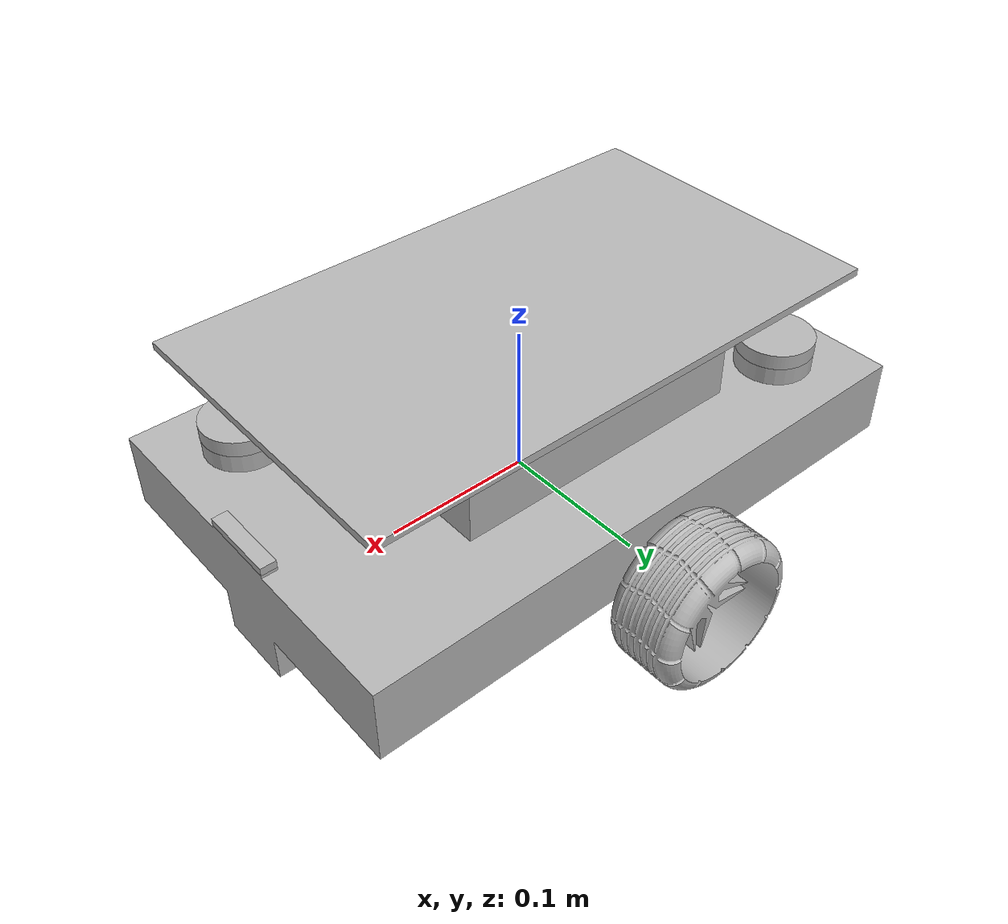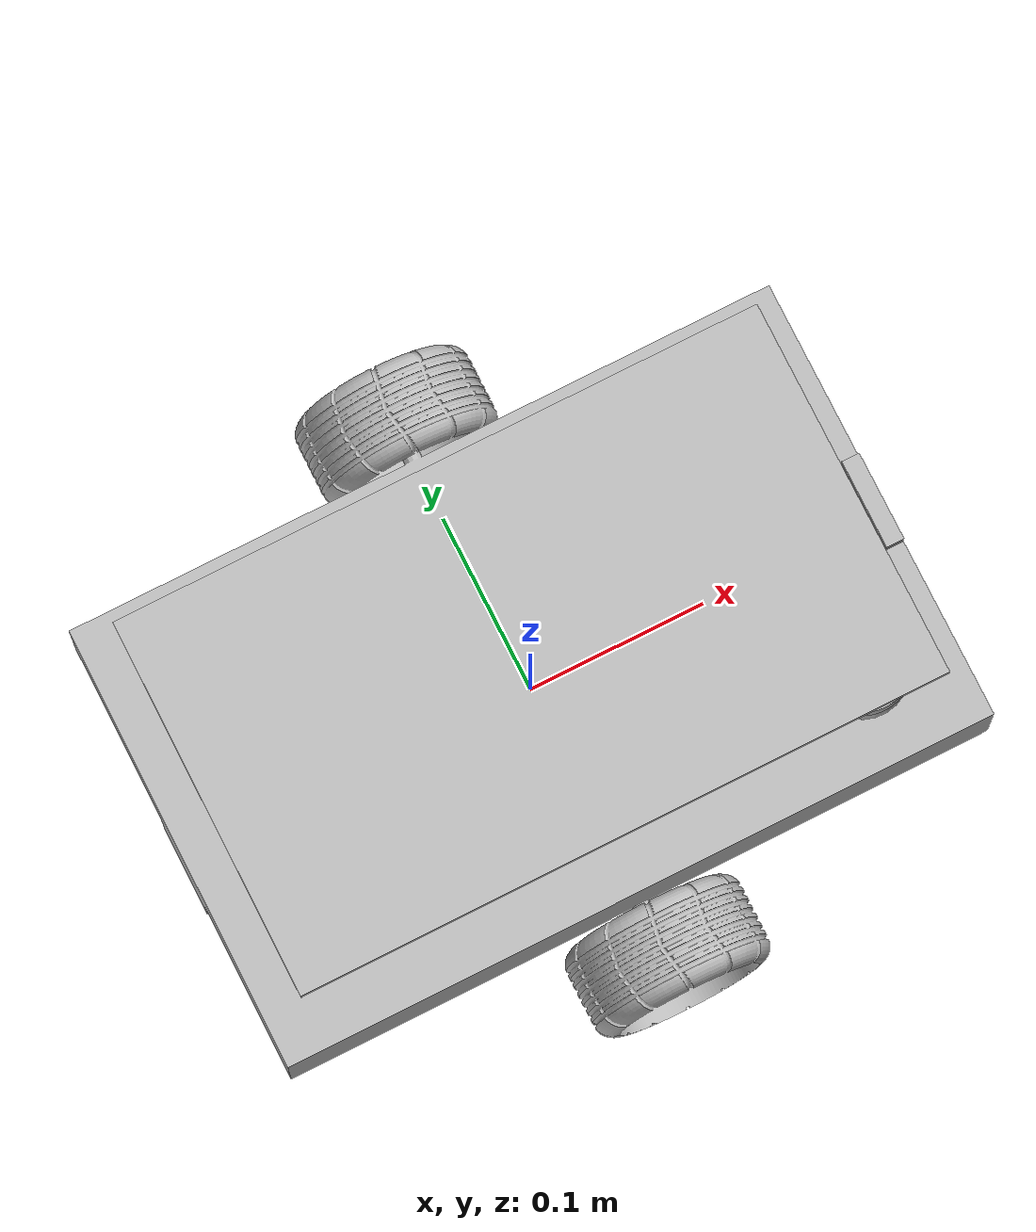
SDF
<?xml version="1.0" ?>
<sdf version="1.11">
  <model name="load_250_v33">
    <link name="base_link">
      <inertial>
        <mass>0.0001</mass>
        <inertia>
          <ixx>1e-09</ixx>
          <ixy>0</ixy>
          <ixz>0</ixz>
          <iyy>1e-09</iyy>
          <iyz>0</iyz>
          <izz>1e-09</izz>
        </inertia>
      </inertial>
    </link>
    <link name="froller_1">
      <pose relative_to="__model__">-0.20000000558793546 -0.1750000026077032 -0.05 0.0 -0.0 0.0</pose>
      <inertial>
        <pose>0.37500000558793545 0.1750000026077032 0.020000000000000004 0.0 -0.0 0.0</pose>
        <mass>0.2630560248605853</mass>
        <inertia>
          <ixx>4.208896397769348e-05</ixx>
          <ixy>-2.842170943040401e-18</ixy>
          <ixz>0.0</ixz>
          <iyy>4.208896397768676e-05</iyy>
          <iyz>1.7763568394002505e-19</iyz>
          <izz>4.208896397768849e-05</izz>
        </inertia>
      </inertial>
      <visual name="froller_1__froller_visual">
        <geometry>
          <mesh>
            <scale>0.01 0.01 0.01</scale>
            <uri>meshes/froller_1/froller_visual.obj</uri>
          </mesh>
        </geometry>
      </visual>
      <collision name="froller_1__froller_collision">
        <pose relative_to="__model__">0.175 0.0 -0.03 -0.0 -1.5707963267948966 0</pose>
        <geometry>
          <sphere>
            <radius>0.02</radius>
          </sphere>
        </geometry>
        <surface>
          <friction>
            <torsional>
              <coefficient>0.0</coefficient>
            </torsional>
            <ode>
              <mu>0.0</mu>
              <mu2>0.0</mu2>
            </ode>
            <bullet>
              <friction>0.0</friction>
              <friction2>0.0</friction2>
              <rolling_friction>0.0</rolling_friction>
            </bullet>
          </friction>
        </surface>
      </collision>
    </link>
    <link name="broller_1">
      <pose relative_to="__model__">-0.2 -0.175 -0.05 0.0 -0.0 0.0</pose>
      <inertial>
        <pose>0.025000000000000022 0.17500000000000002 0.020000000000000004 0.0 -0.0 0.0</pose>
        <mass>0.2630560248605853</mass>
        <inertia>
          <ixx>4.208896397769061e-05</ixx>
          <ixy>1.4087204822734997e-19</ixy>
          <ixz>-2.168404344971009e-19</ixz>
          <iyy>4.208896397769543e-05</iyy>
          <iyz>7.490254653612431e-20</iyz>
          <izz>4.208896397769023e-05</izz>
        </inertia>
      </inertial>
      <visual name="broller_1__broller_visual">
        <geometry>
          <mesh>
            <scale>0.01 0.01 0.01</scale>
            <uri>meshes/broller_1/broller_visual.obj</uri>
          </mesh>
        </geometry>
      </visual>
      <collision name="broller_1__broller_collision">
        <pose relative_to="__model__">-0.175 0.0 -0.03 -0.0 -1.5707963267948966 0</pose>
        <geometry>
          <sphere>
            <radius>0.02</radius>
          </sphere>
        </geometry>
        <surface>
          <friction>
            <torsional>
              <coefficient>0.0</coefficient>
            </torsional>
            <ode>
              <mu>0.0</mu>
              <mu2>0.0</mu2>
            </ode>
            <bullet>
              <friction>0.0</friction>
              <friction2>0.0</friction2>
              <rolling_friction>0.0</rolling_friction>
            </bullet>
          </friction>
        </surface>
      </collision>
    </link>
    <link name="imu_1">
      <pose relative_to="__model__">-0.2 0.175 0.12 3.141592653589793 -0.0 0.0</pose>
      <inertial>
        <pose>0.2 0.17499999999999996 0.08500000000000002 -3.141592653589793 -0.0 0.0</pose>
        <mass>0.2355</mass>
        <inertia>
          <ixx>2.5512500000000003e-05</ixx>
          <ixy>0.0</ixy>
          <ixz>0.0</ixz>
          <iyy>5.69124999999993e-05</iyy>
          <iyz>0.0</iyz>
          <izz>6.672499999999956e-05</izz>
        </inertia>
      </inertial>
      <visual name="imu_1__imu_visual">
        <geometry>
          <mesh>
            <scale>0.01 0.01 0.01</scale>
            <uri>meshes/imu_1/imu_visual.obj</uri>
          </mesh>
        </geometry>
      </visual>
      <collision name="imu_1__imu_collision">
        <pose relative_to="__model__">0.0 0.0 0.035 -0.0 -1.5707963267948966 0</pose>
        <geometry>
          <box>
            <size>0.02 0.03 0.05</size>
          </box>
        </geometry>
      </collision>
    </link>
    <link name="platform_1">
      <pose relative_to="__model__">-0.2 -0.175 -0.05 0.0 -0.0 6.123233995736766e-17</pose>
      <inertial>
        <pose>0.20000000001825624 0.175 0.14461897647064387 0.0 -0.0 -6.123233995736766e-17</pose>
        <mass>4.533219999999998</mass>
        <inertia>
          <ixx>0.02476554880152236</ixx>
          <ixy>1.684420567471534e-11</ixy>
          <ixz>-5.238766976312822e-12</ixz>
          <iyy>0.05554422130152216</iyy>
          <iyz>1.448607690690551e-10</iyz>
          <izz>0.06986293283333335</izz>
        </inertia>
      </inertial>
      <visual name="platform_1__platform_visual">
        <geometry>
          <mesh>
            <scale>0.01 0.01 0.01</scale>
            <uri>meshes/platform_1/platform_visual.obj</uri>
          </mesh>
        </geometry>
      </visual>
      <collision name="platform_1__platform_collision">
        <pose relative_to="__model__">0.0 1.7763568394002505e-17 0.08850000629013424 -0.0 -1.5707963267948966 0</pose>
        <geometry>
          <box>
            <size>0.06700001258026848 0.21000000000000005 0.360000025160537</size>
          </box>
        </geometry>
      </collision>
    </link>
    <link name="camera_1">
      <pose relative_to="__model__">-0.2 0.175 0.16399999999999998 3.141592653589793 -0.0 0.0</pose>
      <inertial>
        <pose>0.395 0.17499999999999996 0.10950000000000001 -3.141592653589793 -0.0 0.0</pose>
        <mass>0.019624999999999997</mass>
        <inertia>
          <ixx>4.1294270833334005e-06</ixx>
          <ixy>1.7763568394002505e-19</ixy>
          <ixz>2.981555974335137e-19</ixz>
          <iyy>2.044270833332848e-07</iyy>
          <iyz>-4.4408920985006264e-20</iyz>
          <izz>4.2520833333339935e-06</izz>
        </inertia>
      </inertial>
      <visual name="camera_1__camera_visual">
        <geometry>
          <mesh>
            <scale>0.01 0.01 0.01</scale>
            <uri>meshes/camera_1/camera_visual.obj</uri>
          </mesh>
        </geometry>
      </visual>
      <collision name="camera_1__camera_collision">
        <pose relative_to="__model__">0.195 0.0 0.05449999999999999 -0.0 -1.5707963267948966 0</pose>
        <geometry>
          <box>
            <size>0.005 0.05 0.01</size>
          </box>
        </geometry>
      </collision>
    </link>
    <link name="flidar_1">
      <pose relative_to="__model__">-0.2 0.025 0.184 3.141592653589793 -0.0 0.0</pose>
      <inertial>
        <pose>0.35 0.09999999999999998 0.11699999999999999 -3.141592653589793 -0.0 0.0</pose>
        <mass>0.1541343895667491</mass>
        <inertia>
          <ixx>2.5367951616194146e-05</ixx>
          <ixy>1.3010426069826053e-18</ixy>
          <ixz>1.0842021724855044e-18</ixz>
          <iyy>2.5367951616192194e-05</iyy>
          <iyz>-7.589415207398531e-19</iyz>
          <izz>4.816699673960891e-05</izz>
        </inertia>
      </inertial>
      <visual name="flidar_1__flidar_visual">
        <geometry>
          <mesh>
            <scale>0.01 0.01 0.01</scale>
            <uri>meshes/flidar_1/flidar_visual.obj</uri>
          </mesh>
        </geometry>
      </visual>
      <collision name="flidar_1__flidar_collision">
        <pose relative_to="__model__">0.15 -0.075 0.06699999999999999 -0.0 -1.5707963267948966 0</pose>
        <geometry>
          <box>
            <size>0.01 0.05 0.05</size>
          </box>
        </geometry>
      </collision>
    </link>
    <link name="blidar_1">
      <pose relative_to="__model__">-0.2 0.325 0.184 3.141592653589793 -0.0 0.0</pose>
      <inertial>
        <pose>0.05000000000000002 0.25 0.11700000000000002 -3.141592653589793 -0.0 0.0</pose>
        <mass>0.15413438956674944</mass>
        <inertia>
          <ixx>2.536795161619588e-05</ixx>
          <ixy>0.0</ixy>
          <ixz>-2.168404344971009e-19</ixz>
          <iyy>2.536795161619393e-05</iyy>
          <iyz>5.421010862427522e-19</iyz>
          <izz>4.816699673961238e-05</izz>
        </inertia>
      </inertial>
      <visual name="blidar_1__blidar_visual">
        <geometry>
          <mesh>
            <scale>0.01 0.01 0.01</scale>
            <uri>meshes/blidar_1/blidar_visual.obj</uri>
          </mesh>
        </geometry>
      </visual>
      <collision name="blidar_1__blidar_collision">
        <pose relative_to="__model__">-0.15 0.075 0.06699999999999999 -0.0 -1.5707963267948966 0</pose>
        <geometry>
          <box>
            <size>0.01 0.05 0.05000000000000002</size>
          </box>
        </geometry>
      </collision>
    </link>
    <link name="lwheel_1">
      <pose relative_to="__model__">0.0 -0.345 0.0 3.141592653589793 -0.0 0.0</pose>
      <inertial>
        <pose>-3.8721528701299523e-07 -0.1900002387848987 -5.898795481194228e-06 -3.141592653589793 -0.0 0.0</pose>
        <mass>1.0452977986041458</mass>
        <inertia>
          <ixx>0.0011276214981046882</ixx>
          <ixy>3.9380700842175555e-10</ixy>
          <ixz>-6.493558752609229e-08</ixz>
          <iyy>0.001915839348354125</iyy>
          <iyz>-5.2607249342789435e-09</iyz>
          <izz>0.0011276094071435427</izz>
        </inertia>
      </inertial>
      <visual name="lwheel_1__lwheel_visual">
        <geometry>
          <mesh>
            <scale>0.01 0.01 0.01</scale>
            <uri>meshes/lwheel_1/lwheel_visual.obj</uri>
          </mesh>
        </geometry>
      </visual>
      <collision name="lwheel_1__lwheel_collision">
        <pose relative_to="__model__">0.0 -0.155 0.0 -0.0 -1.5707963267948966 0</pose>
        <geometry>
          <sphere>
            <radius>0.05</radius>
          </sphere>
        </geometry>
        <surface>
          <friction>
            <torsional>
              <coefficient>0.0</coefficient>
            </torsional>
            <ode>
              <mu>0.8</mu>
              <mu2>0.8</mu2>
            </ode>
            <bullet>
              <friction>0.8</friction>
              <friction2>0.8</friction2>
              <rolling_friction>0.01</rolling_friction>
            </bullet>
          </friction>
        </surface>
      </collision>
    </link>
    <link name="rwheel_1">
      <pose relative_to="__model__">0.0 0.265 0.0 3.141592653589793 -0.0 0.0</pose>
      <inertial>
        <pose>-3.872152870215363e-07 0.10999976121510144 -5.8987954810038635e-06 -3.141592653589793 -0.0 0.0</pose>
        <mass>1.0452977986041367</mass>
        <inertia>
          <ixx>0.0011276214981046952</ixx>
          <ixy>3.938070079755942e-10</ixy>
          <ixz>-6.493558752823415e-08</ixz>
          <iyy>0.0019158393483540961</iyy>
          <iyz>-5.260724932138385e-09</iyz>
          <izz>0.0011276094071435323</izz>
        </inertia>
      </inertial>
      <visual name="rwheel_1__rwheel_visual">
        <geometry>
          <mesh>
            <scale>0.01 0.01 0.01</scale>
            <uri>meshes/rwheel_1/rwheel_visual.obj</uri>
          </mesh>
        </geometry>
      </visual>
      <collision name="rwheel_1__rwheel_collision">
        <pose relative_to="__model__">0.0 0.155 0.0 -0.0 -1.5707963267948966 0</pose>
        <geometry>
          <sphere>
            <radius>0.05</radius>
          </sphere>
        </geometry>
        <surface>
          <friction>
            <torsional>
              <coefficient>0.0</coefficient>
            </torsional>
            <ode>
              <mu>0.8</mu>
              <mu2>0.8</mu2>
            </ode>
            <bullet>
              <friction>0.8</friction>
              <friction2>0.8</friction2>
              <rolling_friction>0.01</rolling_friction>
            </bullet>
          </friction>
        </surface>
      </collision>
    </link>
    <link name="body_1">
      <inertial>
        <pose>1.446053010825452e-05 1.2287790206724232e-16 0.03247046284094435 0.0 -0.0 0.0</pose>
        <mass>46.4821308880129</mass>
        <inertia>
          <ixx>0.2582819743458066</ixx>
          <ixy>0.004161628518543688</ixy>
          <ixz>-1.2025447264138033e-05</ixz>
          <iyy>0.6234668092851965</iyy>
          <iyz>3.6823121867303636e-16</iyz>
          <izz>0.8201449501044838</izz>
        </inertia>
      </inertial>
      <visual name="body_1__base_link_visual">
        <geometry>
          <mesh>
            <scale>0.01 0.01 0.01</scale>
            <uri>meshes/body_1/base_link_visual.obj</uri>
          </mesh>
        </geometry>
      </visual>
      <collision name="body_1__base_link_collision">
        <pose relative_to="__model__">0.0 0.0 0.0425 -0.0 -1.5707963267948966 0</pose>
        <geometry>
          <box>
            <size>0.145 0.3 0.4</size>
          </box>
        </geometry>
      </collision>
    </link>

    <joint name="revolute_23" type="revolute">
      <pose relative_to="__model__">0.0 -0.15 0.0 0.0 -0.0 0.0</pose>
      <parent>body_1</parent>
      <child>lwheel_1</child>
      <axis>
        <xyz expressed_in="__model__">0.0 1.0 -0.0</xyz>
      </axis>
    </joint>
    <joint name="revolute_24" type="revolute">
      <pose relative_to="__model__">0.0 0.15 0.0 0.0 -0.0 0.0</pose>
      <parent>body_1</parent>
      <child>rwheel_1</child>
      <axis>
        <xyz expressed_in="__model__">0.0 1.0 -0.0</xyz>
      </axis>
    </joint>
    <joint name="rigid_25" type="fixed">
      <pose relative_to="__model__">0.15 -0.075 0.06199999999999999 0.0 -0.0 0.0</pose>
      <parent>body_1</parent>
      <child>flidar_1</child>
      <axis/>
    </joint>
    <joint name="rigid_26" type="fixed">
      <pose relative_to="__model__">0.195 0.0 0.05199999999999999 0.0 -0.0 0.0</pose>
      <parent>body_1</parent>
      <child>camera_1</child>
      <axis/>
    </joint>
    <joint name="rigid_27" type="fixed">
      <pose relative_to="__model__">-0.15 0.075 0.06199999999999999 0.0 -0.0 0.0</pose>
      <parent>body_1</parent>
      <child>blidar_1</child>
      <axis/>
    </joint>
    <joint name="rigid_28" type="fixed">
      <pose relative_to="__model__">0.0 0.0 0.025 0.0 -0.0 0.0</pose>
      <parent>body_1</parent>
      <child>imu_1</child>
      <axis/>
    </joint>
    <joint name="slider_31" type="prismatic">
      <pose relative_to="__model__">0.0 0.0 0.055 0.0 -0.0 0.0</pose>
      <parent>body_1</parent>
      <child>platform_1</child>
      <axis>
        <xyz expressed_in="__model__">0.0 0.0 1.0</xyz>
        <limit>
          <lower>0.0</lower>
          <upper>0.055</upper>
        </limit>
      </axis>
    </joint>
    <joint name="rigid_33" type="fixed">
      <pose relative_to="__model__">0.175 0.0 -0.03 0.0 -0.0 0.0</pose>
      <parent>body_1</parent>
      <child>froller_1</child>
      <axis/>
    </joint>
    <joint name="rigid_34" type="fixed">
      <pose relative_to="__model__">-0.175 0.0 -0.03 0.0 -0.0 0.0</pose>
      <parent>body_1</parent>
      <child>broller_1</child>
      <axis/>
    </joint>
    <joint name="base_link_joint" type="fixed">
      <parent>base_link</parent>
      <child>body_1</child>
      <axis/>
    </joint>

    <plugin
      filename="ignition-gazebo-diff-drive-system"
      name="ignition::gazebo::systems::DiffDrive">
      <left_joint>revolute_24</left_joint>
      <right_joint>revolute_23</right_joint>
      <wheel_separation>0.3</wheel_separation>
      <wheel_radius>0.05</wheel_radius>
      <odom_publish_frequency>30</odom_publish_frequency>
      <max_linear_acceleration>2</max_linear_acceleration>
      <min_linear_acceleration>-1</min_linear_acceleration>
      <max_angular_acceleration>4</max_angular_acceleration>
      <min_angular_acceleration>-4</min_angular_acceleration>
      <max_linear_velocity>2.0</max_linear_velocity>
      <min_linear_velocity>-0.1</min_linear_velocity>
      <max_angular_velocity>3</max_angular_velocity>
      <min_angular_velocity>-1</min_angular_velocity>
    </plugin>
  </model>
</sdf>
